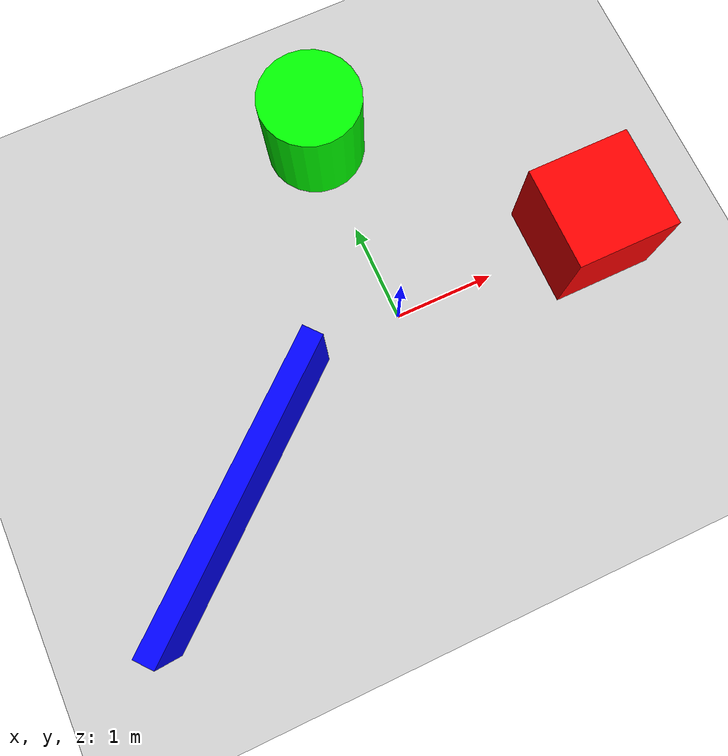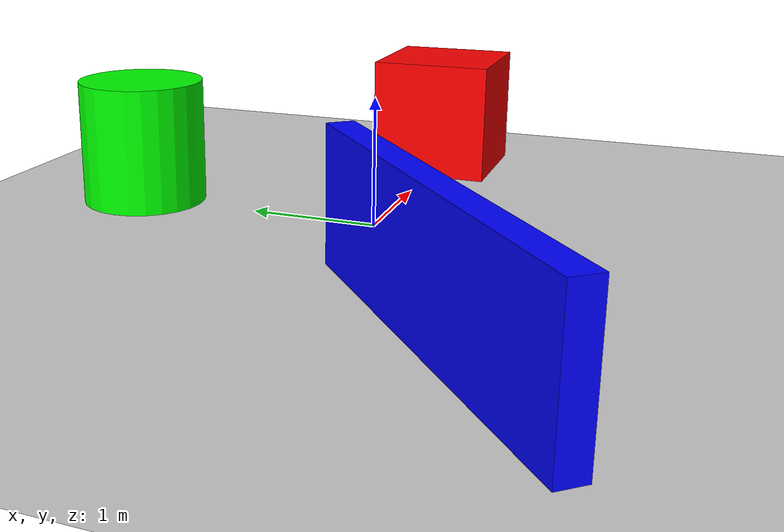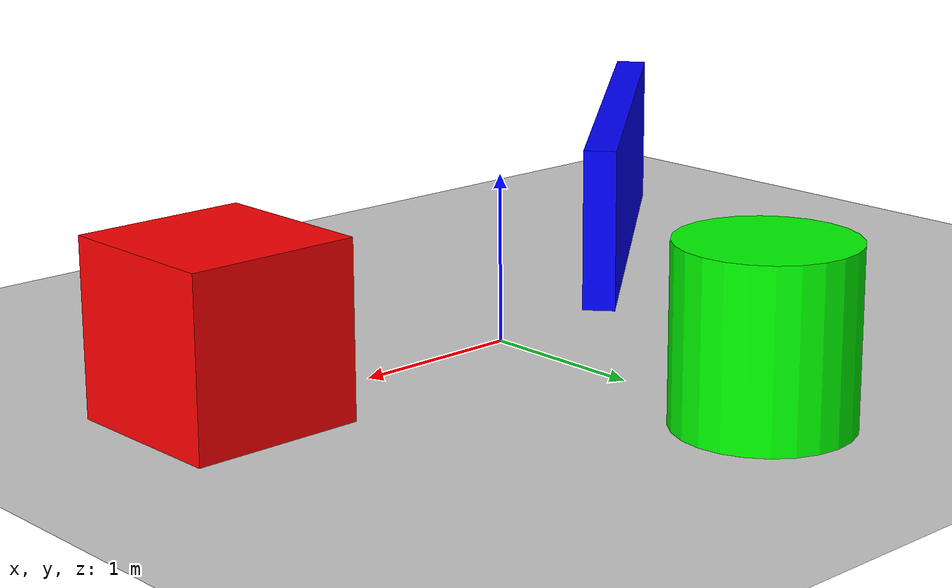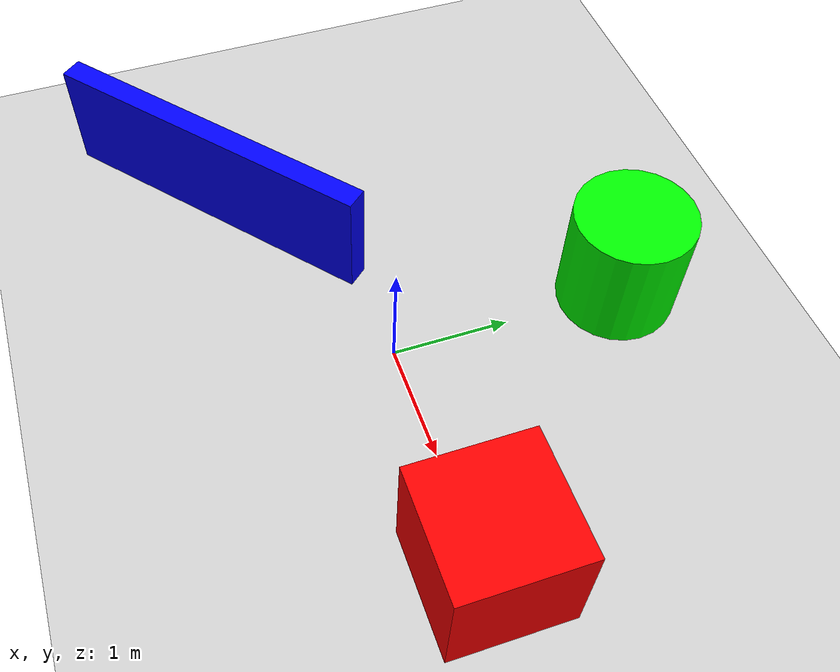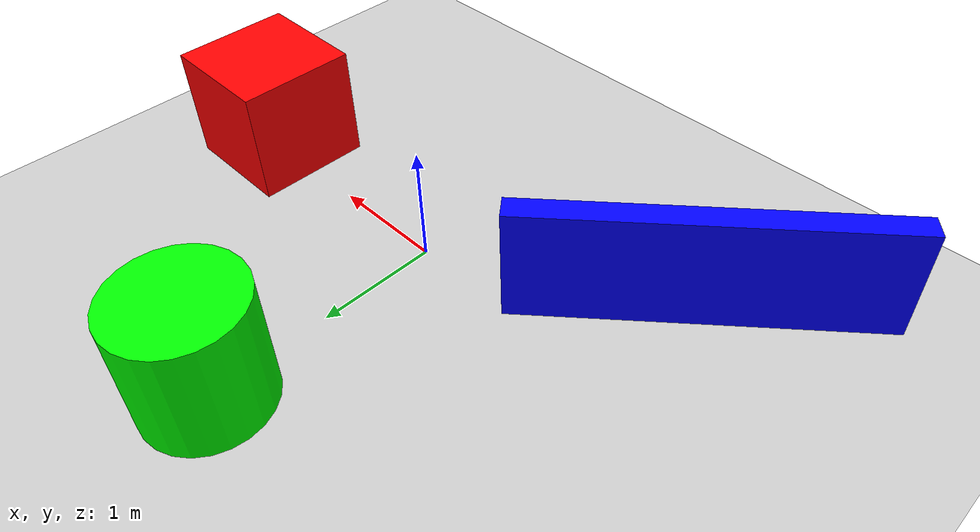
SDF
<?xml version="1.0" ?>
<sdf version="1.6">
  <world name="default">
    <!-- A global light source -->
    <include>
      <uri>model://sun</uri>
    </include>

    <!-- A ground plane -->
    <include>
      <uri>model://ground_plane</uri>
    </include>

    <!-- Obstacle 1: Box -->
    <model name="box1">
      <pose>2 0 0.5 0 0 0</pose>
      <link name="link">
        <collision name="collision">
          <geometry>
            <box>
              <size>1.0 1.0 1.0</size>
            </box>
          </geometry>
        </collision>
        <visual name="visual">
          <geometry>
            <box>
              <size>1.0 1.0 1.0</size>
            </box>
          </geometry>
          <material>
            <ambient>1 0 0 1</ambient>
            <diffuse>1 0 0 1</diffuse>
          </material>
        </visual>
      </link>
      <static>true</static>
    </model>

    <!-- Obstacle 2: Cylinder -->
    <model name="cylinder1">
      <pose>0 2 0.5 0 0 0</pose>
      <link name="link">
        <collision name="collision">
          <geometry>
            <cylinder>
              <radius>0.5</radius>
              <length>1.0</length>
            </cylinder>
          </geometry>
        </collision>
        <visual name="visual">
          <geometry>
            <cylinder>
              <radius>0.5</radius>
              <length>1.0</length>
            </cylinder>
          </geometry>
          <material>
            <ambient>0 1 0 1</ambient>
            <diffuse>0 1 0 1</diffuse>
          </material>
        </visual>
      </link>
      <static>true</static>
    </model>

    <!-- Obstacle 3: Wall -->
    <model name="wall1">
      <pose>-2 -1 0.5 0 0 0.7</pose>
      <link name="link">
        <collision name="collision">
          <geometry>
            <box>
              <size>3.0 0.2 1.0</size>
            </box>
          </geometry>
        </collision>
        <visual name="visual">
          <geometry>
            <box>
              <size>3.0 0.2 1.0</size>
            </box>
          </geometry>
          <material>
            <ambient>0 0 1 1</ambient>
            <diffuse>0 0 1 1</diffuse>
          </material>
        </visual>
      </link>
      <static>true</static>
    </model>

    <!-- Physics settings -->
    <physics type="ode">
      <real_time_update_rate>1000.0</real_time_update_rate>
      <max_step_size>0.001</max_step_size>
      <real_time_factor>1</real_time_factor>
      <ode>
        <solver>
          <type>quick</type>
          <iters>150</iters>
          <precon_iters>0</precon_iters>
          <sor>1.400000</sor>
          <use_dynamic_moi_rescaling>1</use_dynamic_moi_rescaling>
        </solver>
        <constraints>
          <cfm>0.00001</cfm>
          <erp>0.2</erp>
          <contact_max_correcting_vel>2000.000000</contact_max_correcting_vel>
          <contact_surface_layer>0.01000</contact_surface_layer>
        </constraints>
      </ode>
    </physics>
  </world>
</sdf>
